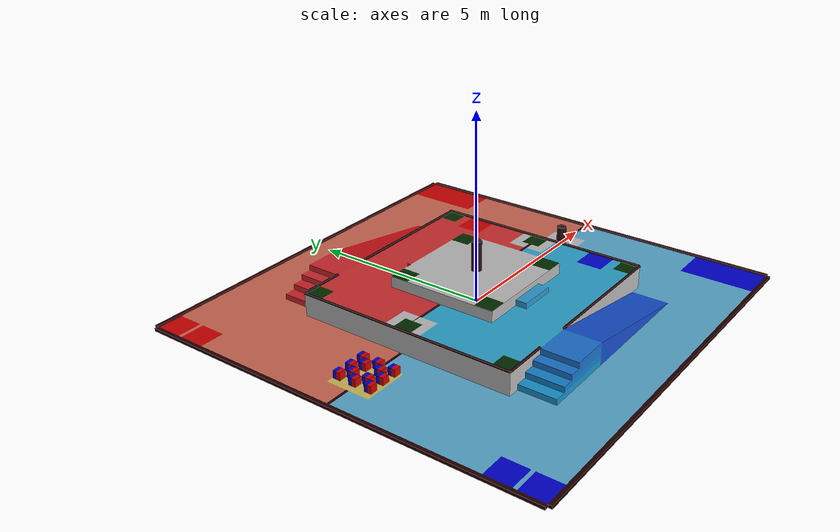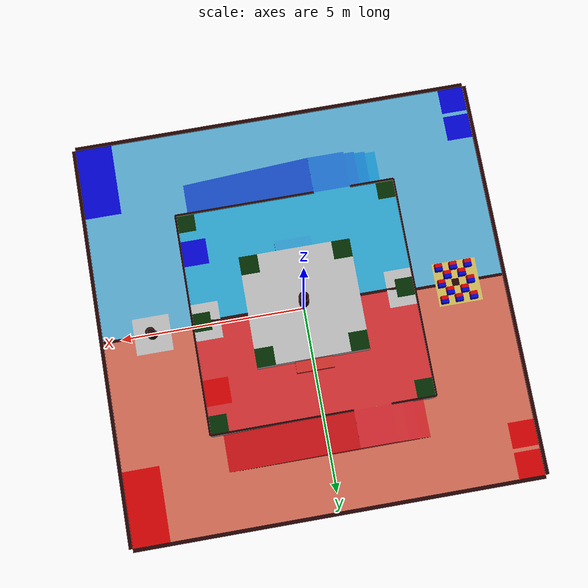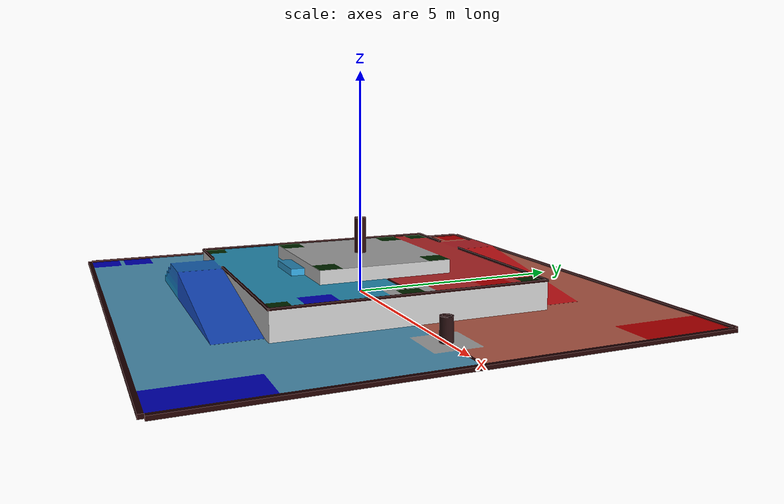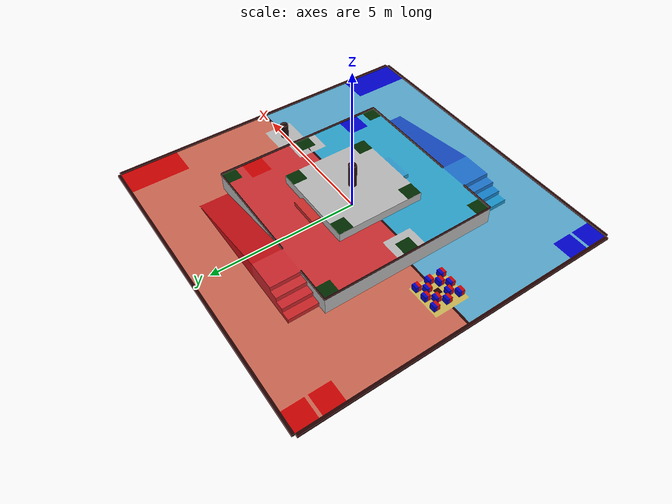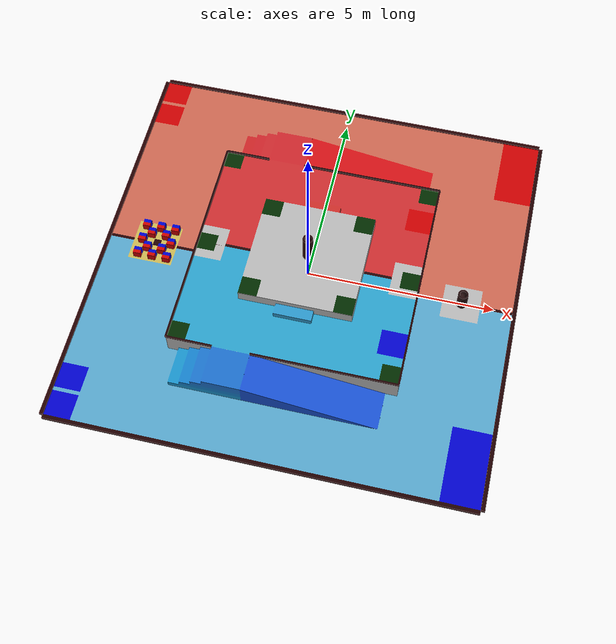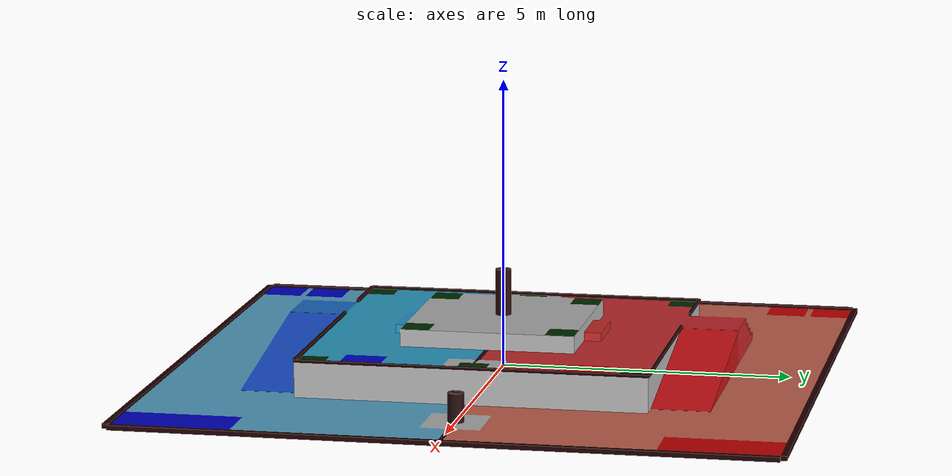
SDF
<?xml version="1.0"?>
<sdf version="1.6">
  <model name="robocon_ground">
    <static>true</static>

    <!-- 视觉部分：引用你的 DAE 模型，显示所有颜色和形状 -->
    <link name="visual_link">
      <visual name="visual">
        <geometry>
          <mesh>
            <uri>model://robocon_ground/meshes/Untitled.dae</uri>
          </mesh>
        </geometry>
      </visual>
    </link>

    <!-- 碰撞体部分：每个物理实体用基本几何体表示 -->

    <!-- ========== 1. 红方半场（地面） ========== -->
    <!-- 规则：11m × 5.5m，红方在 y>0，碰撞体厚 0.02m -->
    <link name="collision_ground_red">
      <collision name="collision">
        <geometry>
          <box>
            <size>11 5.5 0.02</size>
          </box>
        </geometry>
        <pose>0 2.75 -0.01 0 0 0</pose>
      </collision>
    </link>

    <!-- ========== 2. 蓝方半场（地面） ========== -->
    <link name="collision_ground_blue">
      <collision name="collision">
        <geometry>
          <box>
            <size>11 5.5 0.02</size>
          </box>
        </geometry>
        <pose>0 -2.75 -0.01 0 0 0</pose>
      </collision>
    </link>

    <!-- ========== 3. 中央隔板 ========== -->
    <!-- 规则：长 11m，厚 50mm (0.05m)，高 80mm (0.08m) -->
    <link name="collision_center_divider">
      <collision name="collision">
        <geometry>
          <box>
            <size>11 0.05 0.08</size>
          </box>
        </geometry>
        <pose>0 0 0.04 0 0 0</pose>
      </collision>
    </link>

    <!-- ========== 4. 前围栏（Y负方向） ========== -->
    <!-- 规则：内高 80mm (0.08m)，厚 50mm (0.05m) -->
    <link name="collision_wall_front">
      <collision name="collision">
        <geometry>
          <box>
            <size>11 0.05 0.08</size>
          </box>
        </geometry>
        <pose>0 -5.5 0.04 0 0 0</pose>
      </collision>
    </link>

    <!-- ========== 5. 后围栏（Y正方向） ========== -->
    <link name="collision_wall_back">
      <collision name="collision">
        <geometry>
          <box>
            <size>11 0.05 0.08</size>
          </box>
        </geometry>
        <pose>0 5.5 0.04 0 0 0</pose>
      </collision>
    </link>

    <!-- ========== 6. 左围栏（X负方向） ========== -->
    <link name="collision_wall_left">
      <collision name="collision">
        <geometry>
          <box>
            <size>0.05 11 0.08</size>
          </box>
        </geometry>
        <pose>-5.5 0 0.04 0 0 0</pose>
      </collision>
    </link>

    <!-- ========== 7. 右围栏（X正方向） ========== -->
    <link name="collision_wall_right">
      <collision name="collision">
        <geometry>
          <box>
            <size>0.05 11 0.08</size>
          </box>
        </geometry>
        <pose>5.5 0 0.04 0 0 0</pose>
      </collision>
    </link>

    <!-- ========== 8. 五色石基座 ========== -->
    <!-- 规则：高 500mm (0.5m)，直径 270mm (0.27m) -->
    <link name="collision_stone_base">
      <collision name="collision">
        <geometry>
          <cylinder>
            <radius>0.135</radius>
            <length>0.5</length>
          </cylinder>
        </geometry>
        <pose>0 0 0.25 0 0 0</pose>
      </collision>
    </link>

    <!-- ========== 9. L1层（高台） ========== -->
    <!-- 规则：高出地面 600mm (0.6m)，尺寸 6m × 6m -->
    <link name="collision_l1">
      <collision name="collision">
        <geometry>
          <box>
            <size>6 6 0.02</size>
          </box>
        </geometry>
        <pose>0 0 0.61 0 0 0</pose>
      </collision>
    </link>

    <!-- ========== 10. L2层（最高台） ========== -->
    <!-- 规则：高出地面 900mm (0.9m)，尺寸 3m × 3m -->
    <link name="collision_l2">
      <collision name="collision">
        <geometry>
          <box>
            <size>3 3 0.02</size>
          </box>
        </geometry>
        <pose>0 0 0.91 0 0 0</pose>
      </collision>
    </link>

  </model>
</sdf>
